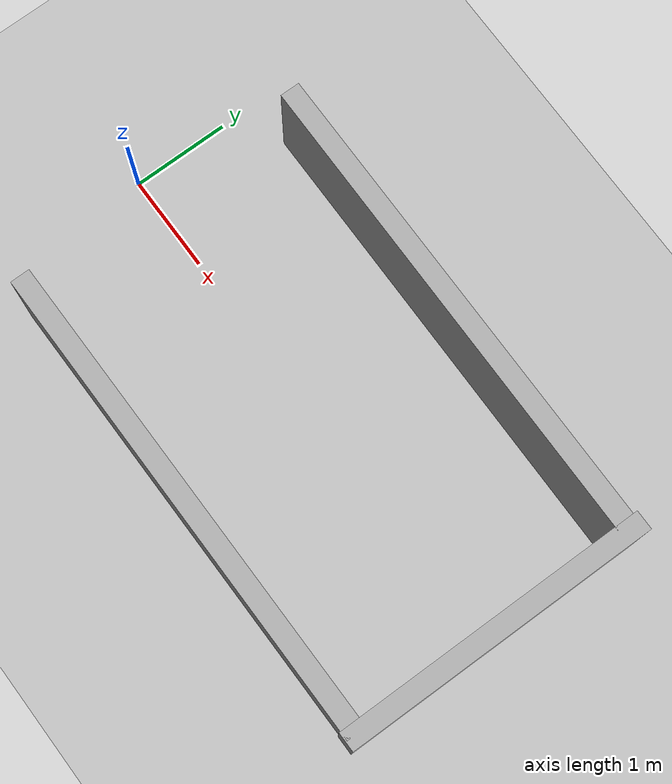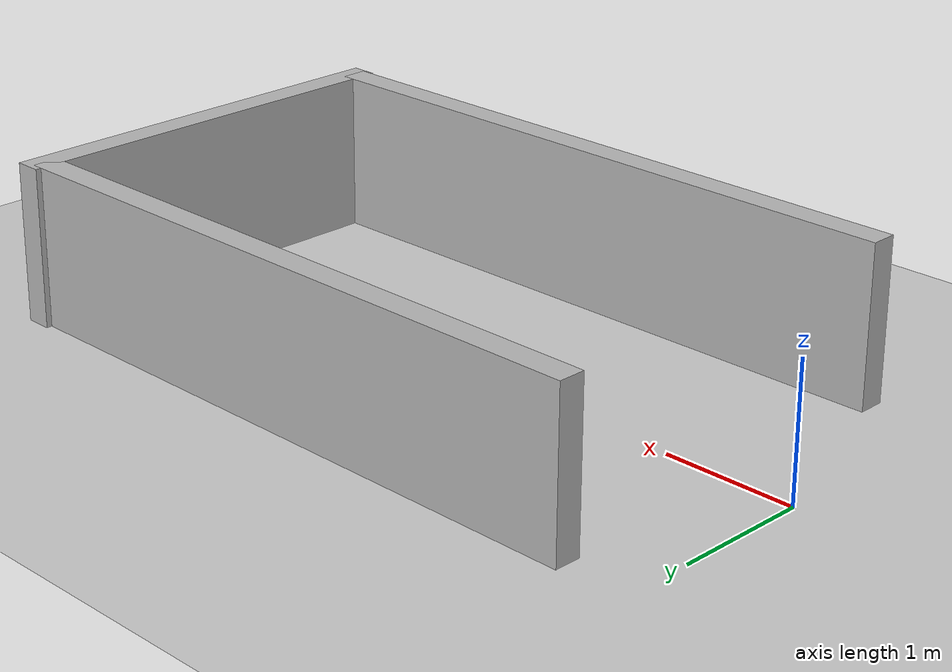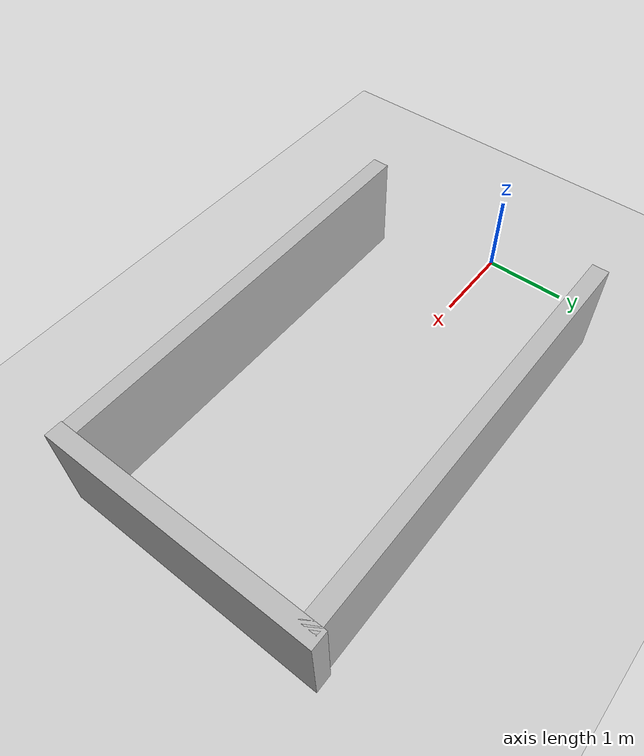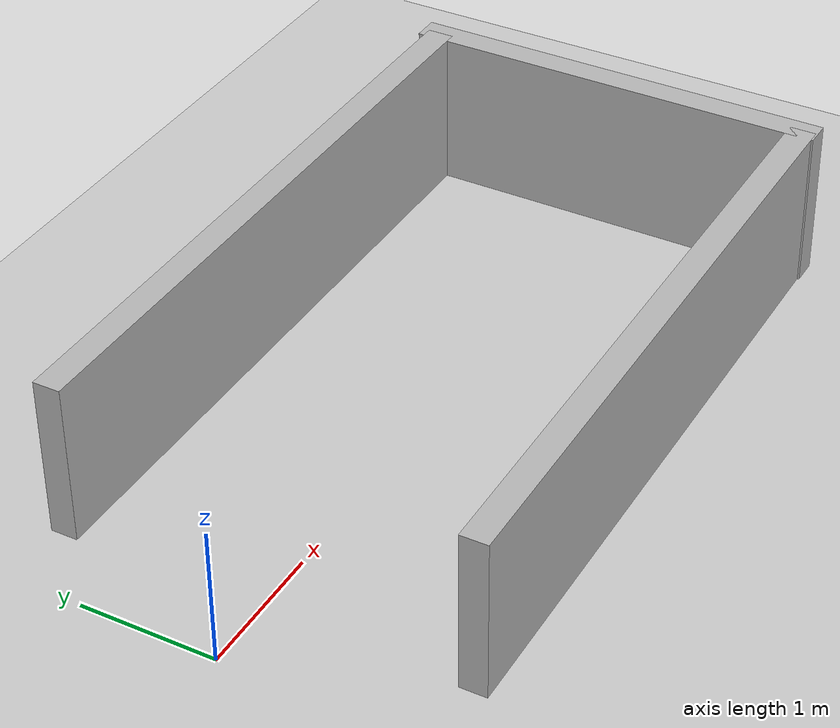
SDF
<?xml version="1.0"?>
<sdf version="1.6">
  <world name="v2-04e3-maneuver-s4725">
    <gravity>0 0 -9.81</gravity>
    <physics name="v2_deterministic" type="ode">
      <max_step_size>0.002</max_step_size>
      <real_time_update_rate>500</real_time_update_rate>
    </physics>
    <include>
      <uri>model://sun</uri>
    </include>
    <include>
      <uri>model://ground_plane</uri>
    </include>
    <model name="bay-left">
      <static>true</static>
      <pose>2.992064935 1.475353217 0.600000000 0 0 -0.002901303</pose>
      <link name="link">
        <collision name="collision">
          <geometry>
            <box>
              <size>5.000000 0.200000 1.200000</size>
            </box>
          </geometry>
        </collision>
        <visual name="visual">
          <geometry>
            <box>
              <size>5.000000 0.200000 1.200000</size>
            </box>
          </geometry>
        </visual>
      </link>
    </model>
    <model name="bay-right">
      <static>true</static>
      <pose>2.993733537 -1.483116171 0.600000000 0 0 0.003641017</pose>
      <link name="link">
        <collision name="collision">
          <geometry>
            <box>
              <size>5.000000 0.200000 1.200000</size>
            </box>
          </geometry>
        </collision>
        <visual name="visual">
          <geometry>
            <box>
              <size>5.000000 0.200000 1.200000</size>
            </box>
          </geometry>
        </visual>
      </link>
    </model>
    <model name="bay-back">
      <static>true</static>
      <pose>5.501785336 0.011138746 0.600000000 0 0 -0.003255956</pose>
      <link name="link">
        <collision name="collision">
          <geometry>
            <box>
              <size>0.200000 3.200000 1.200000</size>
            </box>
          </geometry>
        </collision>
        <visual name="visual">
          <geometry>
            <box>
              <size>0.200000 3.200000 1.200000</size>
            </box>
          </geometry>
        </visual>
      </link>
    </model>
  </world>
</sdf>
